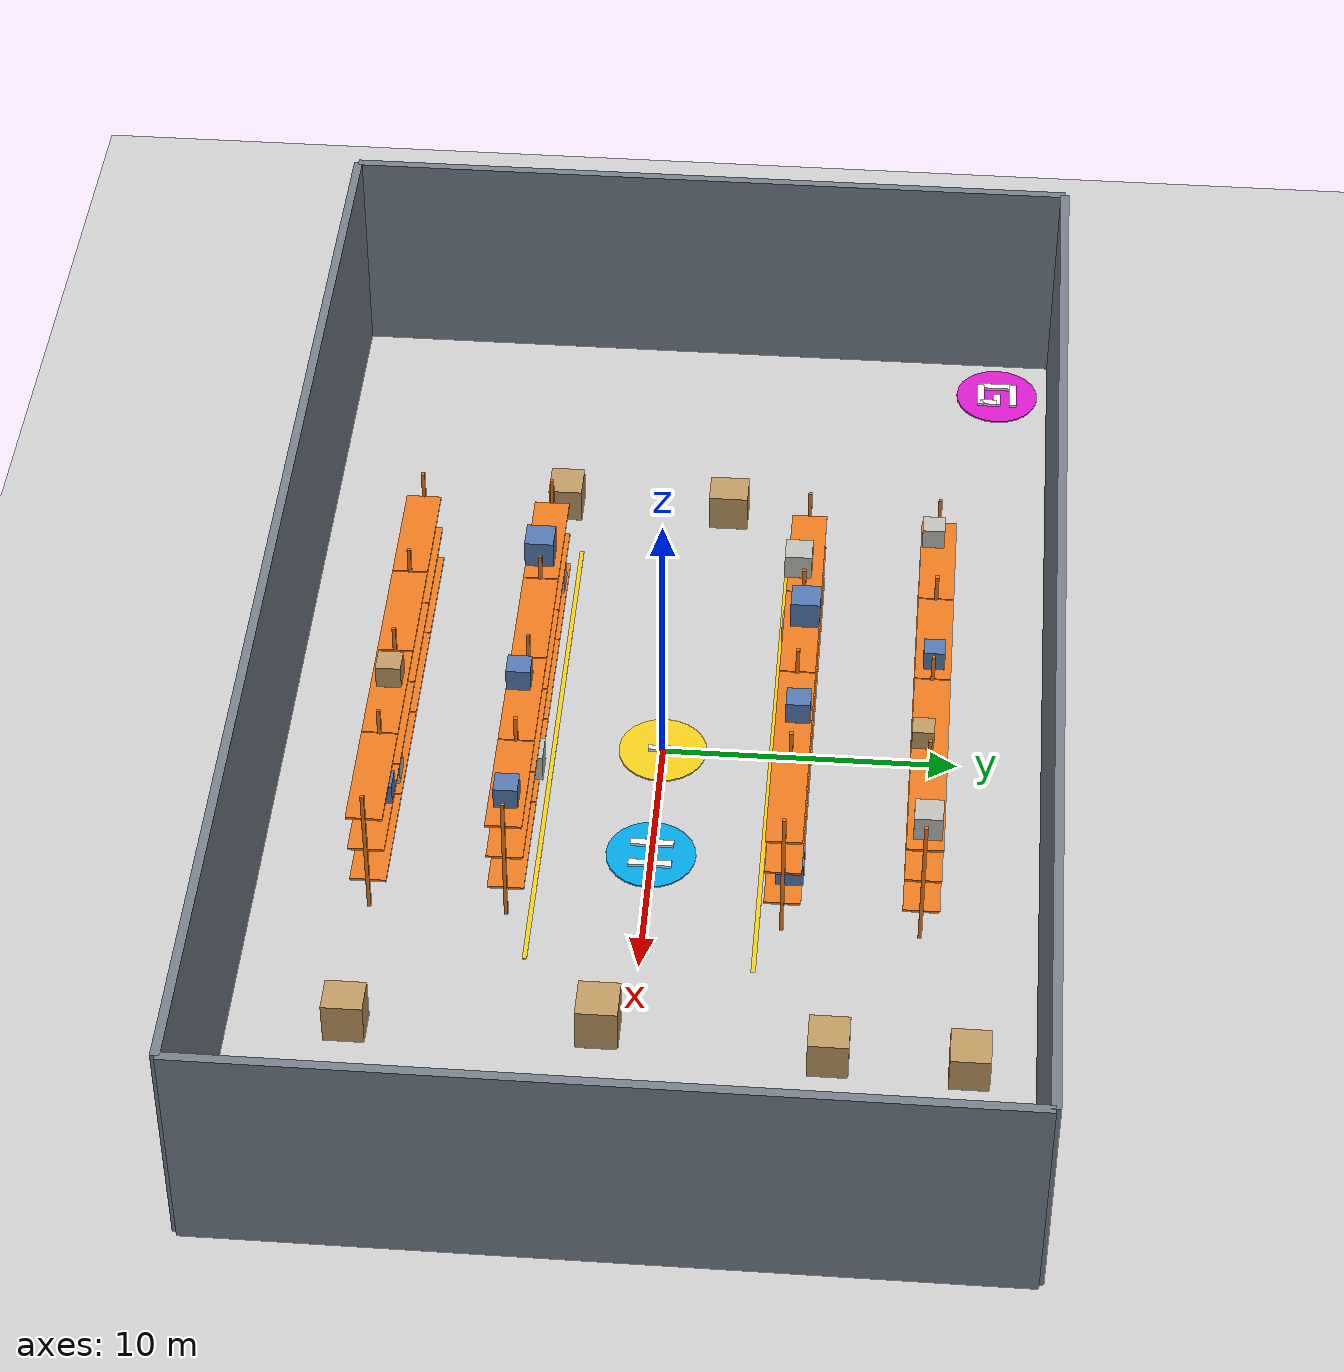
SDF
<?xml version="1.0" ?>
<sdf version="1.6">
  <world name="warehouse_course">
    <include><uri>model://sun</uri></include>
    <include><uri>model://ground_plane</uri></include>

    <!--  44m x 26m warehouse racks                              -->
    <!--  4 rack rows y=+/-4.5,+/-9, x in [-8,8], posts+shelves+cargo -->
    <!--  Central aisle |y|<3.9, SPAWN=(0,0) HOME=(5,0)          -->
    <!--  GOAL=(-20,11) NW corner clear area                     -->
    <!--  Top-layer cargo top ~5m > 4m flight altitude, cannot fly over -->

    <scene>
      <ambient>0.45 0.47 0.50 1</ambient>
      <background>0.60 0.63 0.68 1</background>
      <shadows>1</shadows>
    </scene>

    <!-- Outer walls (perimeter) -->
    <model name="perim_s">
      <static>true</static>
      <pose>0.00 -13.00 4.0 0 0 0</pose>
      <link name="body">
        <collision name="c"><geometry><box><size>44.00 0.30 8.0</size></box></geometry></collision>
        <visual name="v"><geometry><box><size>44.00 0.30 8.0</size></box></geometry>
          <material><ambient>0.35 0.38 0.42 1</ambient><diffuse>0.46 0.50 0.55 1</diffuse></material>
        </visual>
      </link>
    </model>
    <model name="perim_n">
      <static>true</static>
      <pose>0.00 13.00 4.0 0 0 0</pose>
      <link name="body">
        <collision name="c"><geometry><box><size>44.00 0.30 8.0</size></box></geometry></collision>
        <visual name="v"><geometry><box><size>44.00 0.30 8.0</size></box></geometry>
          <material><ambient>0.35 0.38 0.42 1</ambient><diffuse>0.46 0.50 0.55 1</diffuse></material>
        </visual>
      </link>
    </model>
    <model name="perim_w">
      <static>true</static>
      <pose>-22.00 0.00 4.0 0 0 0</pose>
      <link name="body">
        <collision name="c"><geometry><box><size>0.30 26.00 8.0</size></box></geometry></collision>
        <visual name="v"><geometry><box><size>0.30 26.00 8.0</size></box></geometry>
          <material><ambient>0.35 0.38 0.42 1</ambient><diffuse>0.46 0.50 0.55 1</diffuse></material>
        </visual>
      </link>
    </model>
    <model name="perim_e">
      <static>true</static>
      <pose>22.00 0.00 4.0 0 0 0</pose>
      <link name="body">
        <collision name="c"><geometry><box><size>0.30 26.00 8.0</size></box></geometry></collision>
        <visual name="v"><geometry><box><size>0.30 26.00 8.0</size></box></geometry>
          <material><ambient>0.35 0.38 0.42 1</ambient><diffuse>0.46 0.50 0.55 1</diffuse></material>
        </visual>
      </link>
    </model>

    <!-- Rack rows x4: 5 posts + 12 shelf boards per row -->
    <model name="shelf_r0_post0">
      <static>true</static>
      <pose>-8.00 -9.00 2.50 0 0 0</pose>
      <link name="body">
        <collision name="c"><geometry><box><size>0.12 0.12 5.00</size></box></geometry></collision>
        <visual name="v"><geometry><box><size>0.12 0.12 5.00</size></box></geometry>
          <material><ambient>0.80 0.38 0.08 1</ambient><diffuse>0.92 0.48 0.12 1</diffuse></material>
        </visual>
      </link>
    </model>
    <model name="shelf_r0_post1">
      <static>true</static>
      <pose>-4.00 -9.00 2.50 0 0 0</pose>
      <link name="body">
        <collision name="c"><geometry><box><size>0.12 0.12 5.00</size></box></geometry></collision>
        <visual name="v"><geometry><box><size>0.12 0.12 5.00</size></box></geometry>
          <material><ambient>0.80 0.38 0.08 1</ambient><diffuse>0.92 0.48 0.12 1</diffuse></material>
        </visual>
      </link>
    </model>
    <model name="shelf_r0_post2">
      <static>true</static>
      <pose>0.00 -9.00 2.50 0 0 0</pose>
      <link name="body">
        <collision name="c"><geometry><box><size>0.12 0.12 5.00</size></box></geometry></collision>
        <visual name="v"><geometry><box><size>0.12 0.12 5.00</size></box></geometry>
          <material><ambient>0.80 0.38 0.08 1</ambient><diffuse>0.92 0.48 0.12 1</diffuse></material>
        </visual>
      </link>
    </model>
    <model name="shelf_r0_post3">
      <static>true</static>
      <pose>4.00 -9.00 2.50 0 0 0</pose>
      <link name="body">
        <collision name="c"><geometry><box><size>0.12 0.12 5.00</size></box></geometry></collision>
        <visual name="v"><geometry><box><size>0.12 0.12 5.00</size></box></geometry>
          <material><ambient>0.80 0.38 0.08 1</ambient><diffuse>0.92 0.48 0.12 1</diffuse></material>
        </visual>
      </link>
    </model>
    <model name="shelf_r0_post4">
      <static>true</static>
      <pose>8.00 -9.00 2.50 0 0 0</pose>
      <link name="body">
        <collision name="c"><geometry><box><size>0.12 0.12 5.00</size></box></geometry></collision>
        <visual name="v"><geometry><box><size>0.12 0.12 5.00</size></box></geometry>
          <material><ambient>0.80 0.38 0.08 1</ambient><diffuse>0.92 0.48 0.12 1</diffuse></material>
        </visual>
      </link>
    </model>
    <model name="shelf_r0_deck0_L0">
      <static>true</static>
      <pose>-6.00 -9.00 1.160 0 0 0</pose>
      <link name="body">
        <collision name="c"><geometry><box><size>3.96 1.20 0.08</size></box></geometry></collision>
        <visual name="v"><geometry><box><size>3.96 1.20 0.08</size></box></geometry>
          <material><ambient>0.80 0.38 0.08 1</ambient><diffuse>0.92 0.48 0.12 1</diffuse></material>
        </visual>
      </link>
    </model>
    <model name="shelf_r0_deck0_L1">
      <static>true</static>
      <pose>-6.00 -9.00 2.560 0 0 0</pose>
      <link name="body">
        <collision name="c"><geometry><box><size>3.96 1.20 0.08</size></box></geometry></collision>
        <visual name="v"><geometry><box><size>3.96 1.20 0.08</size></box></geometry>
          <material><ambient>0.80 0.38 0.08 1</ambient><diffuse>0.92 0.48 0.12 1</diffuse></material>
        </visual>
      </link>
    </model>
    <model name="shelf_r0_deck0_L2">
      <static>true</static>
      <pose>-6.00 -9.00 3.960 0 0 0</pose>
      <link name="body">
        <collision name="c"><geometry><box><size>3.96 1.20 0.08</size></box></geometry></collision>
        <visual name="v"><geometry><box><size>3.96 1.20 0.08</size></box></geometry>
          <material><ambient>0.80 0.38 0.08 1</ambient><diffuse>0.92 0.48 0.12 1</diffuse></material>
        </visual>
      </link>
    </model>
    <model name="shelf_r0_deck1_L0">
      <static>true</static>
      <pose>-2.00 -9.00 1.160 0 0 0</pose>
      <link name="body">
        <collision name="c"><geometry><box><size>3.96 1.20 0.08</size></box></geometry></collision>
        <visual name="v"><geometry><box><size>3.96 1.20 0.08</size></box></geometry>
          <material><ambient>0.80 0.38 0.08 1</ambient><diffuse>0.92 0.48 0.12 1</diffuse></material>
        </visual>
      </link>
    </model>
    <model name="shelf_r0_deck1_L1">
      <static>true</static>
      <pose>-2.00 -9.00 2.560 0 0 0</pose>
      <link name="body">
        <collision name="c"><geometry><box><size>3.96 1.20 0.08</size></box></geometry></collision>
        <visual name="v"><geometry><box><size>3.96 1.20 0.08</size></box></geometry>
          <material><ambient>0.80 0.38 0.08 1</ambient><diffuse>0.92 0.48 0.12 1</diffuse></material>
        </visual>
      </link>
    </model>
    <model name="shelf_r0_deck1_L2">
      <static>true</static>
      <pose>-2.00 -9.00 3.960 0 0 0</pose>
      <link name="body">
        <collision name="c"><geometry><box><size>3.96 1.20 0.08</size></box></geometry></collision>
        <visual name="v"><geometry><box><size>3.96 1.20 0.08</size></box></geometry>
          <material><ambient>0.80 0.38 0.08 1</ambient><diffuse>0.92 0.48 0.12 1</diffuse></material>
        </visual>
      </link>
    </model>
    <model name="shelf_r0_deck2_L0">
      <static>true</static>
      <pose>2.00 -9.00 1.160 0 0 0</pose>
      <link name="body">
        <collision name="c"><geometry><box><size>3.96 1.20 0.08</size></box></geometry></collision>
        <visual name="v"><geometry><box><size>3.96 1.20 0.08</size></box></geometry>
          <material><ambient>0.80 0.38 0.08 1</ambient><diffuse>0.92 0.48 0.12 1</diffuse></material>
        </visual>
      </link>
    </model>
    <model name="shelf_r0_deck2_L1">
      <static>true</static>
      <pose>2.00 -9.00 2.560 0 0 0</pose>
      <link name="body">
        <collision name="c"><geometry><box><size>3.96 1.20 0.08</size></box></geometry></collision>
        <visual name="v"><geometry><box><size>3.96 1.20 0.08</size></box></geometry>
          <material><ambient>0.80 0.38 0.08 1</ambient><diffuse>0.92 0.48 0.12 1</diffuse></material>
        </visual>
      </link>
    </model>
    <model name="shelf_r0_deck2_L2">
      <static>true</static>
      <pose>2.00 -9.00 3.960 0 0 0</pose>
      <link name="body">
        <collision name="c"><geometry><box><size>3.96 1.20 0.08</size></box></geometry></collision>
        <visual name="v"><geometry><box><size>3.96 1.20 0.08</size></box></geometry>
          <material><ambient>0.80 0.38 0.08 1</ambient><diffuse>0.92 0.48 0.12 1</diffuse></material>
        </visual>
      </link>
    </model>
    <model name="shelf_r0_deck3_L0">
      <static>true</static>
      <pose>6.00 -9.00 1.160 0 0 0</pose>
      <link name="body">
        <collision name="c"><geometry><box><size>3.96 1.20 0.08</size></box></geometry></collision>
        <visual name="v"><geometry><box><size>3.96 1.20 0.08</size></box></geometry>
          <material><ambient>0.80 0.38 0.08 1</ambient><diffuse>0.92 0.48 0.12 1</diffuse></material>
        </visual>
      </link>
    </model>
    <model name="shelf_r0_deck3_L1">
      <static>true</static>
      <pose>6.00 -9.00 2.560 0 0 0</pose>
      <link name="body">
        <collision name="c"><geometry><box><size>3.96 1.20 0.08</size></box></geometry></collision>
        <visual name="v"><geometry><box><size>3.96 1.20 0.08</size></box></geometry>
          <material><ambient>0.80 0.38 0.08 1</ambient><diffuse>0.92 0.48 0.12 1</diffuse></material>
        </visual>
      </link>
    </model>
    <model name="shelf_r0_deck3_L2">
      <static>true</static>
      <pose>6.00 -9.00 3.960 0 0 0</pose>
      <link name="body">
        <collision name="c"><geometry><box><size>3.96 1.20 0.08</size></box></geometry></collision>
        <visual name="v"><geometry><box><size>3.96 1.20 0.08</size></box></geometry>
          <material><ambient>0.80 0.38 0.08 1</ambient><diffuse>0.92 0.48 0.12 1</diffuse></material>
        </visual>
      </link>
    </model>
    <model name="shelf_r1_post0">
      <static>true</static>
      <pose>-8.00 -4.50 2.50 0 0 0</pose>
      <link name="body">
        <collision name="c"><geometry><box><size>0.12 0.12 5.00</size></box></geometry></collision>
        <visual name="v"><geometry><box><size>0.12 0.12 5.00</size></box></geometry>
          <material><ambient>0.80 0.38 0.08 1</ambient><diffuse>0.92 0.48 0.12 1</diffuse></material>
        </visual>
      </link>
    </model>
    <model name="shelf_r1_post1">
      <static>true</static>
      <pose>-4.00 -4.50 2.50 0 0 0</pose>
      <link name="body">
        <collision name="c"><geometry><box><size>0.12 0.12 5.00</size></box></geometry></collision>
        <visual name="v"><geometry><box><size>0.12 0.12 5.00</size></box></geometry>
          <material><ambient>0.80 0.38 0.08 1</ambient><diffuse>0.92 0.48 0.12 1</diffuse></material>
        </visual>
      </link>
    </model>
    <model name="shelf_r1_post2">
      <static>true</static>
      <pose>0.00 -4.50 2.50 0 0 0</pose>
      <link name="body">
        <collision name="c"><geometry><box><size>0.12 0.12 5.00</size></box></geometry></collision>
        <visual name="v"><geometry><box><size>0.12 0.12 5.00</size></box></geometry>
          <material><ambient>0.80 0.38 0.08 1</ambient><diffuse>0.92 0.48 0.12 1</diffuse></material>
        </visual>
      </link>
    </model>
    <model name="shelf_r1_post3">
      <static>true</static>
      <pose>4.00 -4.50 2.50 0 0 0</pose>
      <link name="body">
        <collision name="c"><geometry><box><size>0.12 0.12 5.00</size></box></geometry></collision>
        <visual name="v"><geometry><box><size>0.12 0.12 5.00</size></box></geometry>
          <material><ambient>0.80 0.38 0.08 1</ambient><diffuse>0.92 0.48 0.12 1</diffuse></material>
        </visual>
      </link>
    </model>
    <model name="shelf_r1_post4">
      <static>true</static>
      <pose>8.00 -4.50 2.50 0 0 0</pose>
      <link name="body">
        <collision name="c"><geometry><box><size>0.12 0.12 5.00</size></box></geometry></collision>
        <visual name="v"><geometry><box><size>0.12 0.12 5.00</size></box></geometry>
          <material><ambient>0.80 0.38 0.08 1</ambient><diffuse>0.92 0.48 0.12 1</diffuse></material>
        </visual>
      </link>
    </model>
    <model name="shelf_r1_deck0_L0">
      <static>true</static>
      <pose>-6.00 -4.50 1.160 0 0 0</pose>
      <link name="body">
        <collision name="c"><geometry><box><size>3.96 1.20 0.08</size></box></geometry></collision>
        <visual name="v"><geometry><box><size>3.96 1.20 0.08</size></box></geometry>
          <material><ambient>0.80 0.38 0.08 1</ambient><diffuse>0.92 0.48 0.12 1</diffuse></material>
        </visual>
      </link>
    </model>
    <model name="shelf_r1_deck0_L1">
      <static>true</static>
      <pose>-6.00 -4.50 2.560 0 0 0</pose>
      <link name="body">
        <collision name="c"><geometry><box><size>3.96 1.20 0.08</size></box></geometry></collision>
        <visual name="v"><geometry><box><size>3.96 1.20 0.08</size></box></geometry>
          <material><ambient>0.80 0.38 0.08 1</ambient><diffuse>0.92 0.48 0.12 1</diffuse></material>
        </visual>
      </link>
    </model>
    <model name="shelf_r1_deck0_L2">
      <static>true</static>
      <pose>-6.00 -4.50 3.960 0 0 0</pose>
      <link name="body">
        <collision name="c"><geometry><box><size>3.96 1.20 0.08</size></box></geometry></collision>
        <visual name="v"><geometry><box><size>3.96 1.20 0.08</size></box></geometry>
          <material><ambient>0.80 0.38 0.08 1</ambient><diffuse>0.92 0.48 0.12 1</diffuse></material>
        </visual>
      </link>
    </model>
    <model name="shelf_r1_deck1_L0">
      <static>true</static>
      <pose>-2.00 -4.50 1.160 0 0 0</pose>
      <link name="body">
        <collision name="c"><geometry><box><size>3.96 1.20 0.08</size></box></geometry></collision>
        <visual name="v"><geometry><box><size>3.96 1.20 0.08</size></box></geometry>
          <material><ambient>0.80 0.38 0.08 1</ambient><diffuse>0.92 0.48 0.12 1</diffuse></material>
        </visual>
      </link>
    </model>
    <model name="shelf_r1_deck1_L1">
      <static>true</static>
      <pose>-2.00 -4.50 2.560 0 0 0</pose>
      <link name="body">
        <collision name="c"><geometry><box><size>3.96 1.20 0.08</size></box></geometry></collision>
        <visual name="v"><geometry><box><size>3.96 1.20 0.08</size></box></geometry>
          <material><ambient>0.80 0.38 0.08 1</ambient><diffuse>0.92 0.48 0.12 1</diffuse></material>
        </visual>
      </link>
    </model>
    <model name="shelf_r1_deck1_L2">
      <static>true</static>
      <pose>-2.00 -4.50 3.960 0 0 0</pose>
      <link name="body">
        <collision name="c"><geometry><box><size>3.96 1.20 0.08</size></box></geometry></collision>
        <visual name="v"><geometry><box><size>3.96 1.20 0.08</size></box></geometry>
          <material><ambient>0.80 0.38 0.08 1</ambient><diffuse>0.92 0.48 0.12 1</diffuse></material>
        </visual>
      </link>
    </model>
    <model name="shelf_r1_deck2_L0">
      <static>true</static>
      <pose>2.00 -4.50 1.160 0 0 0</pose>
      <link name="body">
        <collision name="c"><geometry><box><size>3.96 1.20 0.08</size></box></geometry></collision>
        <visual name="v"><geometry><box><size>3.96 1.20 0.08</size></box></geometry>
          <material><ambient>0.80 0.38 0.08 1</ambient><diffuse>0.92 0.48 0.12 1</diffuse></material>
        </visual>
      </link>
    </model>
    <model name="shelf_r1_deck2_L1">
      <static>true</static>
      <pose>2.00 -4.50 2.560 0 0 0</pose>
      <link name="body">
        <collision name="c"><geometry><box><size>3.96 1.20 0.08</size></box></geometry></collision>
        <visual name="v"><geometry><box><size>3.96 1.20 0.08</size></box></geometry>
          <material><ambient>0.80 0.38 0.08 1</ambient><diffuse>0.92 0.48 0.12 1</diffuse></material>
        </visual>
      </link>
    </model>
    <model name="shelf_r1_deck2_L2">
      <static>true</static>
      <pose>2.00 -4.50 3.960 0 0 0</pose>
      <link name="body">
        <collision name="c"><geometry><box><size>3.96 1.20 0.08</size></box></geometry></collision>
        <visual name="v"><geometry><box><size>3.96 1.20 0.08</size></box></geometry>
          <material><ambient>0.80 0.38 0.08 1</ambient><diffuse>0.92 0.48 0.12 1</diffuse></material>
        </visual>
      </link>
    </model>
    <model name="shelf_r1_deck3_L0">
      <static>true</static>
      <pose>6.00 -4.50 1.160 0 0 0</pose>
      <link name="body">
        <collision name="c"><geometry><box><size>3.96 1.20 0.08</size></box></geometry></collision>
        <visual name="v"><geometry><box><size>3.96 1.20 0.08</size></box></geometry>
          <material><ambient>0.80 0.38 0.08 1</ambient><diffuse>0.92 0.48 0.12 1</diffuse></material>
        </visual>
      </link>
    </model>
    <model name="shelf_r1_deck3_L1">
      <static>true</static>
      <pose>6.00 -4.50 2.560 0 0 0</pose>
      <link name="body">
        <collision name="c"><geometry><box><size>3.96 1.20 0.08</size></box></geometry></collision>
        <visual name="v"><geometry><box><size>3.96 1.20 0.08</size></box></geometry>
          <material><ambient>0.80 0.38 0.08 1</ambient><diffuse>0.92 0.48 0.12 1</diffuse></material>
        </visual>
      </link>
    </model>
    <model name="shelf_r1_deck3_L2">
      <static>true</static>
      <pose>6.00 -4.50 3.960 0 0 0</pose>
      <link name="body">
        <collision name="c"><geometry><box><size>3.96 1.20 0.08</size></box></geometry></collision>
        <visual name="v"><geometry><box><size>3.96 1.20 0.08</size></box></geometry>
          <material><ambient>0.80 0.38 0.08 1</ambient><diffuse>0.92 0.48 0.12 1</diffuse></material>
        </visual>
      </link>
    </model>
    <model name="shelf_r2_post0">
      <static>true</static>
      <pose>-8.00 4.50 2.50 0 0 0</pose>
      <link name="body">
        <collision name="c"><geometry><box><size>0.12 0.12 5.00</size></box></geometry></collision>
        <visual name="v"><geometry><box><size>0.12 0.12 5.00</size></box></geometry>
          <material><ambient>0.80 0.38 0.08 1</ambient><diffuse>0.92 0.48 0.12 1</diffuse></material>
        </visual>
      </link>
    </model>
    <model name="shelf_r2_post1">
      <static>true</static>
      <pose>-4.00 4.50 2.50 0 0 0</pose>
      <link name="body">
        <collision name="c"><geometry><box><size>0.12 0.12 5.00</size></box></geometry></collision>
        <visual name="v"><geometry><box><size>0.12 0.12 5.00</size></box></geometry>
          <material><ambient>0.80 0.38 0.08 1</ambient><diffuse>0.92 0.48 0.12 1</diffuse></material>
        </visual>
      </link>
    </model>
    <model name="shelf_r2_post2">
      <static>true</static>
      <pose>0.00 4.50 2.50 0 0 0</pose>
      <link name="body">
        <collision name="c"><geometry><box><size>0.12 0.12 5.00</size></box></geometry></collision>
        <visual name="v"><geometry><box><size>0.12 0.12 5.00</size></box></geometry>
          <material><ambient>0.80 0.38 0.08 1</ambient><diffuse>0.92 0.48 0.12 1</diffuse></material>
        </visual>
      </link>
    </model>
    <model name="shelf_r2_post3">
      <static>true</static>
      <pose>4.00 4.50 2.50 0 0 0</pose>
      <link name="body">
        <collision name="c"><geometry><box><size>0.12 0.12 5.00</size></box></geometry></collision>
        <visual name="v"><geometry><box><size>0.12 0.12 5.00</size></box></geometry>
          <material><ambient>0.80 0.38 0.08 1</ambient><diffuse>0.92 0.48 0.12 1</diffuse></material>
        </visual>
      </link>
    </model>
    <model name="shelf_r2_post4">
      <static>true</static>
      <pose>8.00 4.50 2.50 0 0 0</pose>
      <link name="body">
        <collision name="c"><geometry><box><size>0.12 0.12 5.00</size></box></geometry></collision>
        <visual name="v"><geometry><box><size>0.12 0.12 5.00</size></box></geometry>
          <material><ambient>0.80 0.38 0.08 1</ambient><diffuse>0.92 0.48 0.12 1</diffuse></material>
        </visual>
      </link>
    </model>
    <model name="shelf_r2_deck0_L0">
      <static>true</static>
      <pose>-6.00 4.50 1.160 0 0 0</pose>
      <link name="body">
        <collision name="c"><geometry><box><size>3.96 1.20 0.08</size></box></geometry></collision>
        <visual name="v"><geometry><box><size>3.96 1.20 0.08</size></box></geometry>
          <material><ambient>0.80 0.38 0.08 1</ambient><diffuse>0.92 0.48 0.12 1</diffuse></material>
        </visual>
      </link>
    </model>
    <model name="shelf_r2_deck0_L1">
      <static>true</static>
      <pose>-6.00 4.50 2.560 0 0 0</pose>
      <link name="body">
        <collision name="c"><geometry><box><size>3.96 1.20 0.08</size></box></geometry></collision>
        <visual name="v"><geometry><box><size>3.96 1.20 0.08</size></box></geometry>
          <material><ambient>0.80 0.38 0.08 1</ambient><diffuse>0.92 0.48 0.12 1</diffuse></material>
        </visual>
      </link>
    </model>
    <model name="shelf_r2_deck0_L2">
      <static>true</static>
      <pose>-6.00 4.50 3.960 0 0 0</pose>
      <link name="body">
        <collision name="c"><geometry><box><size>3.96 1.20 0.08</size></box></geometry></collision>
        <visual name="v"><geometry><box><size>3.96 1.20 0.08</size></box></geometry>
          <material><ambient>0.80 0.38 0.08 1</ambient><diffuse>0.92 0.48 0.12 1</diffuse></material>
        </visual>
      </link>
    </model>
    <model name="shelf_r2_deck1_L0">
      <static>true</static>
      <pose>-2.00 4.50 1.160 0 0 0</pose>
      <link name="body">
        <collision name="c"><geometry><box><size>3.96 1.20 0.08</size></box></geometry></collision>
        <visual name="v"><geometry><box><size>3.96 1.20 0.08</size></box></geometry>
          <material><ambient>0.80 0.38 0.08 1</ambient><diffuse>0.92 0.48 0.12 1</diffuse></material>
        </visual>
      </link>
    </model>
    <model name="shelf_r2_deck1_L1">
      <static>true</static>
      <pose>-2.00 4.50 2.560 0 0 0</pose>
      <link name="body">
        <collision name="c"><geometry><box><size>3.96 1.20 0.08</size></box></geometry></collision>
        <visual name="v"><geometry><box><size>3.96 1.20 0.08</size></box></geometry>
          <material><ambient>0.80 0.38 0.08 1</ambient><diffuse>0.92 0.48 0.12 1</diffuse></material>
        </visual>
      </link>
    </model>
    <model name="shelf_r2_deck1_L2">
      <static>true</static>
      <pose>-2.00 4.50 3.960 0 0 0</pose>
      <link name="body">
        <collision name="c"><geometry><box><size>3.96 1.20 0.08</size></box></geometry></collision>
        <visual name="v"><geometry><box><size>3.96 1.20 0.08</size></box></geometry>
          <material><ambient>0.80 0.38 0.08 1</ambient><diffuse>0.92 0.48 0.12 1</diffuse></material>
        </visual>
      </link>
    </model>
    <model name="shelf_r2_deck2_L0">
      <static>true</static>
      <pose>2.00 4.50 1.160 0 0 0</pose>
      <link name="body">
        <collision name="c"><geometry><box><size>3.96 1.20 0.08</size></box></geometry></collision>
        <visual name="v"><geometry><box><size>3.96 1.20 0.08</size></box></geometry>
          <material><ambient>0.80 0.38 0.08 1</ambient><diffuse>0.92 0.48 0.12 1</diffuse></material>
        </visual>
      </link>
    </model>
    <model name="shelf_r2_deck2_L1">
      <static>true</static>
      <pose>2.00 4.50 2.560 0 0 0</pose>
      <link name="body">
        <collision name="c"><geometry><box><size>3.96 1.20 0.08</size></box></geometry></collision>
        <visual name="v"><geometry><box><size>3.96 1.20 0.08</size></box></geometry>
          <material><ambient>0.80 0.38 0.08 1</ambient><diffuse>0.92 0.48 0.12 1</diffuse></material>
        </visual>
      </link>
    </model>
    <model name="shelf_r2_deck2_L2">
      <static>true</static>
      <pose>2.00 4.50 3.960 0 0 0</pose>
      <link name="body">
        <collision name="c"><geometry><box><size>3.96 1.20 0.08</size></box></geometry></collision>
        <visual name="v"><geometry><box><size>3.96 1.20 0.08</size></box></geometry>
          <material><ambient>0.80 0.38 0.08 1</ambient><diffuse>0.92 0.48 0.12 1</diffuse></material>
        </visual>
      </link>
    </model>
    <model name="shelf_r2_deck3_L0">
      <static>true</static>
      <pose>6.00 4.50 1.160 0 0 0</pose>
      <link name="body">
        <collision name="c"><geometry><box><size>3.96 1.20 0.08</size></box></geometry></collision>
        <visual name="v"><geometry><box><size>3.96 1.20 0.08</size></box></geometry>
          <material><ambient>0.80 0.38 0.08 1</ambient><diffuse>0.92 0.48 0.12 1</diffuse></material>
        </visual>
      </link>
    </model>
    <model name="shelf_r2_deck3_L1">
      <static>true</static>
      <pose>6.00 4.50 2.560 0 0 0</pose>
      <link name="body">
        <collision name="c"><geometry><box><size>3.96 1.20 0.08</size></box></geometry></collision>
        <visual name="v"><geometry><box><size>3.96 1.20 0.08</size></box></geometry>
          <material><ambient>0.80 0.38 0.08 1</ambient><diffuse>0.92 0.48 0.12 1</diffuse></material>
        </visual>
      </link>
    </model>
    <model name="shelf_r2_deck3_L2">
      <static>true</static>
      <pose>6.00 4.50 3.960 0 0 0</pose>
      <link name="body">
        <collision name="c"><geometry><box><size>3.96 1.20 0.08</size></box></geometry></collision>
        <visual name="v"><geometry><box><size>3.96 1.20 0.08</size></box></geometry>
          <material><ambient>0.80 0.38 0.08 1</ambient><diffuse>0.92 0.48 0.12 1</diffuse></material>
        </visual>
      </link>
    </model>
    <model name="shelf_r3_post0">
      <static>true</static>
      <pose>-8.00 9.00 2.50 0 0 0</pose>
      <link name="body">
        <collision name="c"><geometry><box><size>0.12 0.12 5.00</size></box></geometry></collision>
        <visual name="v"><geometry><box><size>0.12 0.12 5.00</size></box></geometry>
          <material><ambient>0.80 0.38 0.08 1</ambient><diffuse>0.92 0.48 0.12 1</diffuse></material>
        </visual>
      </link>
    </model>
    <model name="shelf_r3_post1">
      <static>true</static>
      <pose>-4.00 9.00 2.50 0 0 0</pose>
      <link name="body">
        <collision name="c"><geometry><box><size>0.12 0.12 5.00</size></box></geometry></collision>
        <visual name="v"><geometry><box><size>0.12 0.12 5.00</size></box></geometry>
          <material><ambient>0.80 0.38 0.08 1</ambient><diffuse>0.92 0.48 0.12 1</diffuse></material>
        </visual>
      </link>
    </model>
    <model name="shelf_r3_post2">
      <static>true</static>
      <pose>0.00 9.00 2.50 0 0 0</pose>
      <link name="body">
        <collision name="c"><geometry><box><size>0.12 0.12 5.00</size></box></geometry></collision>
        <visual name="v"><geometry><box><size>0.12 0.12 5.00</size></box></geometry>
          <material><ambient>0.80 0.38 0.08 1</ambient><diffuse>0.92 0.48 0.12 1</diffuse></material>
        </visual>
      </link>
    </model>
    <model name="shelf_r3_post3">
      <static>true</static>
      <pose>4.00 9.00 2.50 0 0 0</pose>
      <link name="body">
        <collision name="c"><geometry><box><size>0.12 0.12 5.00</size></box></geometry></collision>
        <visual name="v"><geometry><box><size>0.12 0.12 5.00</size></box></geometry>
          <material><ambient>0.80 0.38 0.08 1</ambient><diffuse>0.92 0.48 0.12 1</diffuse></material>
        </visual>
      </link>
    </model>
    <model name="shelf_r3_post4">
      <static>true</static>
      <pose>8.00 9.00 2.50 0 0 0</pose>
      <link name="body">
        <collision name="c"><geometry><box><size>0.12 0.12 5.00</size></box></geometry></collision>
        <visual name="v"><geometry><box><size>0.12 0.12 5.00</size></box></geometry>
          <material><ambient>0.80 0.38 0.08 1</ambient><diffuse>0.92 0.48 0.12 1</diffuse></material>
        </visual>
      </link>
    </model>
    <model name="shelf_r3_deck0_L0">
      <static>true</static>
      <pose>-6.00 9.00 1.160 0 0 0</pose>
      <link name="body">
        <collision name="c"><geometry><box><size>3.96 1.20 0.08</size></box></geometry></collision>
        <visual name="v"><geometry><box><size>3.96 1.20 0.08</size></box></geometry>
          <material><ambient>0.80 0.38 0.08 1</ambient><diffuse>0.92 0.48 0.12 1</diffuse></material>
        </visual>
      </link>
    </model>
    <model name="shelf_r3_deck0_L1">
      <static>true</static>
      <pose>-6.00 9.00 2.560 0 0 0</pose>
      <link name="body">
        <collision name="c"><geometry><box><size>3.96 1.20 0.08</size></box></geometry></collision>
        <visual name="v"><geometry><box><size>3.96 1.20 0.08</size></box></geometry>
          <material><ambient>0.80 0.38 0.08 1</ambient><diffuse>0.92 0.48 0.12 1</diffuse></material>
        </visual>
      </link>
    </model>
    <model name="shelf_r3_deck0_L2">
      <static>true</static>
      <pose>-6.00 9.00 3.960 0 0 0</pose>
      <link name="body">
        <collision name="c"><geometry><box><size>3.96 1.20 0.08</size></box></geometry></collision>
        <visual name="v"><geometry><box><size>3.96 1.20 0.08</size></box></geometry>
          <material><ambient>0.80 0.38 0.08 1</ambient><diffuse>0.92 0.48 0.12 1</diffuse></material>
        </visual>
      </link>
    </model>
    <model name="shelf_r3_deck1_L0">
      <static>true</static>
      <pose>-2.00 9.00 1.160 0 0 0</pose>
      <link name="body">
        <collision name="c"><geometry><box><size>3.96 1.20 0.08</size></box></geometry></collision>
        <visual name="v"><geometry><box><size>3.96 1.20 0.08</size></box></geometry>
          <material><ambient>0.80 0.38 0.08 1</ambient><diffuse>0.92 0.48 0.12 1</diffuse></material>
        </visual>
      </link>
    </model>
    <model name="shelf_r3_deck1_L1">
      <static>true</static>
      <pose>-2.00 9.00 2.560 0 0 0</pose>
      <link name="body">
        <collision name="c"><geometry><box><size>3.96 1.20 0.08</size></box></geometry></collision>
        <visual name="v"><geometry><box><size>3.96 1.20 0.08</size></box></geometry>
          <material><ambient>0.80 0.38 0.08 1</ambient><diffuse>0.92 0.48 0.12 1</diffuse></material>
        </visual>
      </link>
    </model>
    <model name="shelf_r3_deck1_L2">
      <static>true</static>
      <pose>-2.00 9.00 3.960 0 0 0</pose>
      <link name="body">
        <collision name="c"><geometry><box><size>3.96 1.20 0.08</size></box></geometry></collision>
        <visual name="v"><geometry><box><size>3.96 1.20 0.08</size></box></geometry>
          <material><ambient>0.80 0.38 0.08 1</ambient><diffuse>0.92 0.48 0.12 1</diffuse></material>
        </visual>
      </link>
    </model>
    <model name="shelf_r3_deck2_L0">
      <static>true</static>
      <pose>2.00 9.00 1.160 0 0 0</pose>
      <link name="body">
        <collision name="c"><geometry><box><size>3.96 1.20 0.08</size></box></geometry></collision>
        <visual name="v"><geometry><box><size>3.96 1.20 0.08</size></box></geometry>
          <material><ambient>0.80 0.38 0.08 1</ambient><diffuse>0.92 0.48 0.12 1</diffuse></material>
        </visual>
      </link>
    </model>
    <model name="shelf_r3_deck2_L1">
      <static>true</static>
      <pose>2.00 9.00 2.560 0 0 0</pose>
      <link name="body">
        <collision name="c"><geometry><box><size>3.96 1.20 0.08</size></box></geometry></collision>
        <visual name="v"><geometry><box><size>3.96 1.20 0.08</size></box></geometry>
          <material><ambient>0.80 0.38 0.08 1</ambient><diffuse>0.92 0.48 0.12 1</diffuse></material>
        </visual>
      </link>
    </model>
    <model name="shelf_r3_deck2_L2">
      <static>true</static>
      <pose>2.00 9.00 3.960 0 0 0</pose>
      <link name="body">
        <collision name="c"><geometry><box><size>3.96 1.20 0.08</size></box></geometry></collision>
        <visual name="v"><geometry><box><size>3.96 1.20 0.08</size></box></geometry>
          <material><ambient>0.80 0.38 0.08 1</ambient><diffuse>0.92 0.48 0.12 1</diffuse></material>
        </visual>
      </link>
    </model>
    <model name="shelf_r3_deck3_L0">
      <static>true</static>
      <pose>6.00 9.00 1.160 0 0 0</pose>
      <link name="body">
        <collision name="c"><geometry><box><size>3.96 1.20 0.08</size></box></geometry></collision>
        <visual name="v"><geometry><box><size>3.96 1.20 0.08</size></box></geometry>
          <material><ambient>0.80 0.38 0.08 1</ambient><diffuse>0.92 0.48 0.12 1</diffuse></material>
        </visual>
      </link>
    </model>
    <model name="shelf_r3_deck3_L1">
      <static>true</static>
      <pose>6.00 9.00 2.560 0 0 0</pose>
      <link name="body">
        <collision name="c"><geometry><box><size>3.96 1.20 0.08</size></box></geometry></collision>
        <visual name="v"><geometry><box><size>3.96 1.20 0.08</size></box></geometry>
          <material><ambient>0.80 0.38 0.08 1</ambient><diffuse>0.92 0.48 0.12 1</diffuse></material>
        </visual>
      </link>
    </model>
    <model name="shelf_r3_deck3_L2">
      <static>true</static>
      <pose>6.00 9.00 3.960 0 0 0</pose>
      <link name="body">
        <collision name="c"><geometry><box><size>3.96 1.20 0.08</size></box></geometry></collision>
        <visual name="v"><geometry><box><size>3.96 1.20 0.08</size></box></geometry>
          <material><ambient>0.80 0.38 0.08 1</ambient><diffuse>0.92 0.48 0.12 1</diffuse></material>
        </visual>
      </link>
    </model>

    <!-- Cargo boxes on shelves (23, ~45% of slots occupied) -->
    <model name="cargo_r0_b2_L0">
      <static>true</static>
      <pose>3.06 -8.93 1.620 0 0 0</pose>
      <link name="body">
        <collision name="c"><geometry><box><size>0.84 0.84 0.84</size></box></geometry></collision>
        <visual name="v"><geometry><box><size>0.84 0.84 0.84</size></box></geometry>
          <material><ambient>0.60 0.60 0.58 1</ambient><diffuse>0.75 0.75 0.72 1</diffuse></material>
        </visual>
      </link>
    </model>
    <model name="cargo_r0_b2_L2">
      <static>true</static>
      <pose>1.39 -8.98 4.420 0 0 0</pose>
      <link name="body">
        <collision name="c"><geometry><box><size>0.84 0.84 0.84</size></box></geometry></collision>
        <visual name="v"><geometry><box><size>0.84 0.84 0.84</size></box></geometry>
          <material><ambient>0.62 0.48 0.30 1</ambient><diffuse>0.75 0.60 0.38 1</diffuse></material>
        </visual>
      </link>
    </model>
    <model name="cargo_r0_b3_L1">
      <static>true</static>
      <pose>5.47 -8.79 2.983 0 0 0</pose>
      <link name="body">
        <collision name="c"><geometry><box><size>0.77 0.77 0.77</size></box></geometry></collision>
        <visual name="v"><geometry><box><size>0.77 0.77 0.77</size></box></geometry>
          <material><ambient>0.25 0.35 0.55 1</ambient><diffuse>0.33 0.47 0.70 1</diffuse></material>
        </visual>
      </link>
    </model>
    <model name="cargo_r1_b0_L0">
      <static>true</static>
      <pose>-6.87 -4.44 1.670 0 0 0</pose>
      <link name="body">
        <collision name="c"><geometry><box><size>0.94 0.94 0.94</size></box></geometry></collision>
        <visual name="v"><geometry><box><size>0.94 0.94 0.94</size></box></geometry>
          <material><ambient>0.60 0.60 0.58 1</ambient><diffuse>0.75 0.75 0.72 1</diffuse></material>
        </visual>
      </link>
    </model>
    <model name="cargo_r1_b0_L1">
      <static>true</static>
      <pose>-5.11 -4.65 2.950 0 0 0</pose>
      <link name="body">
        <collision name="c"><geometry><box><size>0.70 0.70 0.70</size></box></geometry></collision>
        <visual name="v"><geometry><box><size>0.70 0.70 0.70</size></box></geometry>
          <material><ambient>0.25 0.35 0.55 1</ambient><diffuse>0.33 0.47 0.70 1</diffuse></material>
        </visual>
      </link>
    </model>
    <model name="cargo_r1_b0_L2">
      <static>true</static>
      <pose>-5.11 -4.61 4.497 0 0 0</pose>
      <link name="body">
        <collision name="c"><geometry><box><size>0.99 0.99 0.99</size></box></geometry></collision>
        <visual name="v"><geometry><box><size>0.99 0.99 0.99</size></box></geometry>
          <material><ambient>0.25 0.35 0.55 1</ambient><diffuse>0.33 0.47 0.70 1</diffuse></material>
        </visual>
      </link>
    </model>
    <model name="cargo_r1_b2_L0">
      <static>true</static>
      <pose>2.46 -4.27 1.691 0 0 0</pose>
      <link name="body">
        <collision name="c"><geometry><box><size>0.98 0.98 0.98</size></box></geometry></collision>
        <visual name="v"><geometry><box><size>0.98 0.98 0.98</size></box></geometry>
          <material><ambient>0.60 0.60 0.58 1</ambient><diffuse>0.75 0.75 0.72 1</diffuse></material>
        </visual>
      </link>
    </model>
    <model name="cargo_r1_b2_L2">
      <static>true</static>
      <pose>1.20 -4.68 4.404 0 0 0</pose>
      <link name="body">
        <collision name="c"><geometry><box><size>0.81 0.81 0.81</size></box></geometry></collision>
        <visual name="v"><geometry><box><size>0.81 0.81 0.81</size></box></geometry>
          <material><ambient>0.25 0.35 0.55 1</ambient><diffuse>0.33 0.47 0.70 1</diffuse></material>
        </visual>
      </link>
    </model>
    <model name="cargo_r1_b3_L0">
      <static>true</static>
      <pose>6.25 -4.75 1.595 0 0 0</pose>
      <link name="body">
        <collision name="c"><geometry><box><size>0.79 0.79 0.79</size></box></geometry></collision>
        <visual name="v"><geometry><box><size>0.79 0.79 0.79</size></box></geometry>
          <material><ambient>0.25 0.35 0.55 1</ambient><diffuse>0.33 0.47 0.70 1</diffuse></material>
        </visual>
      </link>
    </model>
    <model name="cargo_r1_b3_L2">
      <static>true</static>
      <pose>6.76 -4.51 4.396 0 0 0</pose>
      <link name="body">
        <collision name="c"><geometry><box><size>0.79 0.79 0.79</size></box></geometry></collision>
        <visual name="v"><geometry><box><size>0.79 0.79 0.79</size></box></geometry>
          <material><ambient>0.25 0.35 0.55 1</ambient><diffuse>0.33 0.47 0.70 1</diffuse></material>
        </visual>
      </link>
    </model>
    <model name="cargo_r2_b0_L0">
      <static>true</static>
      <pose>-5.51 4.28 1.622 0 0 0</pose>
      <link name="body">
        <collision name="c"><geometry><box><size>0.84 0.84 0.84</size></box></geometry></collision>
        <visual name="v"><geometry><box><size>0.84 0.84 0.84</size></box></geometry>
          <material><ambient>0.60 0.60 0.58 1</ambient><diffuse>0.75 0.75 0.72 1</diffuse></material>
        </visual>
      </link>
    </model>
    <model name="cargo_r2_b0_L2">
      <static>true</static>
      <pose>-5.17 4.26 4.462 0 0 0</pose>
      <link name="body">
        <collision name="c"><geometry><box><size>0.92 0.92 0.92</size></box></geometry></collision>
        <visual name="v"><geometry><box><size>0.92 0.92 0.92</size></box></geometry>
          <material><ambient>0.60 0.60 0.58 1</ambient><diffuse>0.75 0.75 0.72 1</diffuse></material>
        </visual>
      </link>
    </model>
    <model name="cargo_r2_b1_L1">
      <static>true</static>
      <pose>-3.18 4.27 3.037 0 0 0</pose>
      <link name="body">
        <collision name="c"><geometry><box><size>0.87 0.87 0.87</size></box></geometry></collision>
        <visual name="v"><geometry><box><size>0.87 0.87 0.87</size></box></geometry>
          <material><ambient>0.60 0.60 0.58 1</ambient><diffuse>0.75 0.75 0.72 1</diffuse></material>
        </visual>
      </link>
    </model>
    <model name="cargo_r2_b1_L2">
      <static>true</static>
      <pose>-2.73 4.63 4.493 0 0 0</pose>
      <link name="body">
        <collision name="c"><geometry><box><size>0.99 0.99 0.99</size></box></geometry></collision>
        <visual name="v"><geometry><box><size>0.99 0.99 0.99</size></box></geometry>
          <material><ambient>0.25 0.35 0.55 1</ambient><diffuse>0.33 0.47 0.70 1</diffuse></material>
        </visual>
      </link>
    </model>
    <model name="cargo_r2_b2_L2">
      <static>true</static>
      <pose>2.06 4.64 4.403 0 0 0</pose>
      <link name="body">
        <collision name="c"><geometry><box><size>0.81 0.81 0.81</size></box></geometry></collision>
        <visual name="v"><geometry><box><size>0.81 0.81 0.81</size></box></geometry>
          <material><ambient>0.25 0.35 0.55 1</ambient><diffuse>0.33 0.47 0.70 1</diffuse></material>
        </visual>
      </link>
    </model>
    <model name="cargo_r2_b3_L0">
      <static>true</static>
      <pose>6.71 4.68 1.662 0 0 0</pose>
      <link name="body">
        <collision name="c"><geometry><box><size>0.92 0.92 0.92</size></box></geometry></collision>
        <visual name="v"><geometry><box><size>0.92 0.92 0.92</size></box></geometry>
          <material><ambient>0.25 0.35 0.55 1</ambient><diffuse>0.33 0.47 0.70 1</diffuse></material>
        </visual>
      </link>
    </model>
    <model name="cargo_r2_b3_L1">
      <static>true</static>
      <pose>5.02 4.42 3.092 0 0 0</pose>
      <link name="body">
        <collision name="c"><geometry><box><size>0.98 0.98 0.98</size></box></geometry></collision>
        <visual name="v"><geometry><box><size>0.98 0.98 0.98</size></box></geometry>
          <material><ambient>0.60 0.60 0.58 1</ambient><diffuse>0.75 0.75 0.72 1</diffuse></material>
        </visual>
      </link>
    </model>
    <model name="cargo_r3_b0_L1">
      <static>true</static>
      <pose>-5.89 8.91 3.089 0 0 0</pose>
      <link name="body">
        <collision name="c"><geometry><box><size>0.98 0.98 0.98</size></box></geometry></collision>
        <visual name="v"><geometry><box><size>0.98 0.98 0.98</size></box></geometry>
          <material><ambient>0.25 0.35 0.55 1</ambient><diffuse>0.33 0.47 0.70 1</diffuse></material>
        </visual>
      </link>
    </model>
    <model name="cargo_r3_b0_L2">
      <static>true</static>
      <pose>-7.01 8.82 4.377 0 0 0</pose>
      <link name="body">
        <collision name="c"><geometry><box><size>0.75 0.75 0.75</size></box></geometry></collision>
        <visual name="v"><geometry><box><size>0.75 0.75 0.75</size></box></geometry>
          <material><ambient>0.60 0.60 0.58 1</ambient><diffuse>0.75 0.75 0.72 1</diffuse></material>
        </visual>
      </link>
    </model>
    <model name="cargo_r3_b1_L2">
      <static>true</static>
      <pose>-0.83 9.02 4.357 0 0 0</pose>
      <link name="body">
        <collision name="c"><geometry><box><size>0.71 0.71 0.71</size></box></geometry></collision>
        <visual name="v"><geometry><box><size>0.71 0.71 0.71</size></box></geometry>
          <material><ambient>0.25 0.35 0.55 1</ambient><diffuse>0.33 0.47 0.70 1</diffuse></material>
        </visual>
      </link>
    </model>
    <model name="cargo_r3_b2_L0">
      <static>true</static>
      <pose>2.23 9.16 1.586 0 0 0</pose>
      <link name="body">
        <collision name="c"><geometry><box><size>0.77 0.77 0.77</size></box></geometry></collision>
        <visual name="v"><geometry><box><size>0.77 0.77 0.77</size></box></geometry>
          <material><ambient>0.25 0.35 0.55 1</ambient><diffuse>0.33 0.47 0.70 1</diffuse></material>
        </visual>
      </link>
    </model>
    <model name="cargo_r3_b2_L2">
      <static>true</static>
      <pose>3.00 8.77 4.358 0 0 0</pose>
      <link name="body">
        <collision name="c"><geometry><box><size>0.72 0.72 0.72</size></box></geometry></collision>
        <visual name="v"><geometry><box><size>0.72 0.72 0.72</size></box></geometry>
          <material><ambient>0.62 0.48 0.30 1</ambient><diffuse>0.75 0.60 0.38 1</diffuse></material>
        </visual>
      </link>
    </model>
    <model name="cargo_r3_b3_L2">
      <static>true</static>
      <pose>7.08 9.07 4.460 0 0 0</pose>
      <link name="body">
        <collision name="c"><geometry><box><size>0.92 0.92 0.92</size></box></geometry></collision>
        <visual name="v"><geometry><box><size>0.92 0.92 0.92</size></box></geometry>
          <material><ambient>0.60 0.60 0.58 1</ambient><diffuse>0.75 0.75 0.72 1</diffuse></material>
        </visual>
      </link>
    </model>

    <!-- Loose floor stacks (8: 6 east + 2 west) -->
    <model name="stack_00">
      <static>true</static>
      <pose>17.88 -8.65 0.753 0 0 0</pose>
      <link name="body">
        <collision name="c"><geometry><box><size>1.23 1.14 1.507</size></box></geometry></collision>
        <visual name="v"><geometry><box><size>1.23 1.14 1.507</size></box></geometry>
          <material><ambient>0.62 0.48 0.30 1</ambient><diffuse>0.75 0.60 0.38 1</diffuse></material>
        </visual>
      </link>
    </model>
    <model name="stack_01">
      <static>true</static>
      <pose>12.95 -1.03 0.793 0 0 0</pose>
      <link name="body">
        <collision name="c"><geometry><box><size>1.40 1.36 1.586</size></box></geometry></collision>
        <visual name="v"><geometry><box><size>1.40 1.36 1.586</size></box></geometry>
          <material><ambient>0.62 0.48 0.30 1</ambient><diffuse>0.75 0.60 0.38 1</diffuse></material>
        </visual>
      </link>
    </model>
    <model name="stack_02">
      <static>true</static>
      <pose>17.30 -0.46 0.544 0 0 0</pose>
      <link name="body">
        <collision name="c"><geometry><box><size>1.19 1.22 1.088</size></box></geometry></collision>
        <visual name="v"><geometry><box><size>1.19 1.22 1.088</size></box></geometry>
          <material><ambient>0.62 0.48 0.30 1</ambient><diffuse>0.75 0.60 0.38 1</diffuse></material>
        </visual>
      </link>
    </model>
    <model name="stack_03">
      <static>true</static>
      <pose>13.77 10.74 0.650 0 0 0</pose>
      <link name="body">
        <collision name="c"><geometry><box><size>1.39 1.29 1.300</size></box></geometry></collision>
        <visual name="v"><geometry><box><size>1.39 1.29 1.300</size></box></geometry>
          <material><ambient>0.62 0.48 0.30 1</ambient><diffuse>0.75 0.60 0.38 1</diffuse></material>
        </visual>
      </link>
    </model>
    <model name="stack_04">
      <static>true</static>
      <pose>13.38 -9.04 0.760 0 0 0</pose>
      <link name="body">
        <collision name="c"><geometry><box><size>1.18 1.33 1.520</size></box></geometry></collision>
        <visual name="v"><geometry><box><size>1.18 1.33 1.520</size></box></geometry>
          <material><ambient>0.62 0.48 0.30 1</ambient><diffuse>0.75 0.60 0.38 1</diffuse></material>
        </visual>
      </link>
    </model>
    <model name="stack_05">
      <static>true</static>
      <pose>13.61 6.29 0.699 0 0 0</pose>
      <link name="body">
        <collision name="c"><geometry><box><size>1.33 1.31 1.398</size></box></geometry></collision>
        <visual name="v"><geometry><box><size>1.33 1.31 1.398</size></box></geometry>
          <material><ambient>0.62 0.48 0.30 1</ambient><diffuse>0.75 0.60 0.38 1</diffuse></material>
        </visual>
      </link>
    </model>
    <model name="stack_06">
      <static>true</static>
      <pose>-12.40 -4.46 0.646 0 0 0</pose>
      <link name="body">
        <collision name="c"><geometry><box><size>1.31 1.18 1.291</size></box></geometry></collision>
        <visual name="v"><geometry><box><size>1.31 1.18 1.291</size></box></geometry>
          <material><ambient>0.62 0.48 0.30 1</ambient><diffuse>0.75 0.60 0.38 1</diffuse></material>
        </visual>
      </link>
    </model>
    <model name="stack_07">
      <static>true</static>
      <pose>-12.30 1.44 0.695 0 0 0</pose>
      <link name="body">
        <collision name="c"><geometry><box><size>1.19 1.38 1.390</size></box></geometry></collision>
        <visual name="v"><geometry><box><size>1.19 1.38 1.390</size></box></geometry>
          <material><ambient>0.62 0.48 0.30 1</ambient><diffuse>0.75 0.60 0.38 1</diffuse></material>
        </visual>
      </link>
    </model>

    <!-- Yellow lines on central aisle floor (visual only) -->
    <model name="aisle_stripe_p">
      <static>true</static>
      <pose>0.0 3.70 0.011 0 0 0</pose>
      <link name="link">
        <visual name="v"><geometry><box><size>20.0 0.15 0.02</size></box></geometry>
          <material><ambient>0.9 0.75 0.05 1</ambient><diffuse>0.95 0.8 0.1 1</diffuse><emissive>0.25 0.2 0.02 1</emissive></material>
        </visual>
      </link>
    </model>
    <model name="aisle_stripe_m">
      <static>true</static>
      <pose>0.0 -3.70 0.011 0 0 0</pose>
      <link name="link">
        <visual name="v"><geometry><box><size>20.0 0.15 0.02</size></box></geometry>
          <material><ambient>0.9 0.75 0.05 1</ambient><diffuse>0.95 0.8 0.1 1</diffuse><emissive>0.25 0.2 0.02 1</emissive></material>
        </visual>
      </link>
    </model>

    <!-- SPAWN: (0.0,0.0) - yellow disc + white cross -->
    <model name="spawn_marker">
      <static>true</static>
      <pose>0.00 0.00 0 0 0 0</pose>
      <link name="link">
        <visual name="disc">
          <pose>0 0 0.025 0 0 0</pose>
          <geometry><cylinder><radius>1.5</radius><length>0.05</length></cylinder></geometry>
          <material>
            <ambient>0.95 0.8 0.1 1</ambient><diffuse>0.95 0.8 0.1 1</diffuse>
            <specular>0.1 0.1 0.1 1</specular><emissive>0.95 0.8 0.1 1</emissive>
          </material>
        </visual>
        <visual name="plus_h">
          <pose>0 0 0.1 0 0 0</pose>
          <geometry><box><size>1.0 0.2 0.1</size></box></geometry>
          <material><ambient>1 1 1 1</ambient><diffuse>1 1 1 1</diffuse><emissive>0.4 0.4 0.4 1</emissive></material>
        </visual>
        <visual name="plus_v">
          <pose>0 0 0.1 0 0 0</pose>
          <geometry><box><size>0.2 1.0 0.1</size></box></geometry>
          <material><ambient>1 1 1 1</ambient><diffuse>1 1 1 1</diffuse><emissive>0.4 0.4 0.4 1</emissive></material>
        </visual>
      </link>
    </model>

    <!-- HOME: (5.0,0.0) - cyan disc + white H -->
    <model name="home_marker">
      <static>true</static>
      <pose>5.00 0.00 0 0 0 0</pose>
      <link name="link">
        <visual name="disc">
          <pose>0 0 0.025 0 0 0</pose>
          <geometry><cylinder><radius>1.5</radius><length>0.05</length></cylinder></geometry>
          <material>
            <ambient>0.0 0.65 0.9 1</ambient><diffuse>0.0 0.65 0.9 1</diffuse>
            <specular>0.1 0.1 0.1 1</specular><emissive>0.0 0.65 0.9 1</emissive>
          </material>
        </visual>
        <visual name="h_left">
          <pose>-0.475 0 0.1 0 0 0</pose>
          <geometry><box><size>0.25 1.45 0.1</size></box></geometry>
          <material><ambient>1 1 1 1</ambient><diffuse>1 1 1 1</diffuse><emissive>0.4 0.4 0.4 1</emissive></material>
        </visual>
        <visual name="h_right">
          <pose>0.475 0 0.1 0 0 0</pose>
          <geometry><box><size>0.25 1.45 0.1</size></box></geometry>
          <material><ambient>1 1 1 1</ambient><diffuse>1 1 1 1</diffuse><emissive>0.4 0.4 0.4 1</emissive></material>
        </visual>
        <visual name="h_mid">
          <pose>0 0 0.1 0 0 0</pose>
          <geometry><box><size>0.7 0.25 0.1</size></box></geometry>
          <material><ambient>1 1 1 1</ambient><diffuse>1 1 1 1</diffuse><emissive>0.4 0.4 0.4 1</emissive></material>
        </visual>
      </link>
    </model>

    <!-- GOAL: (-20.0,11.0) - magenta disc + white G -->
    <model name="goal_marker">
      <static>true</static>
      <pose>-20.00 11.00 0 0 0 0</pose>
      <link name="link">
        <visual name="disc">
          <pose>0 0 0.025 0 0 0</pose>
          <geometry><cylinder><radius>1.5</radius><length>0.05</length></cylinder></geometry>
          <material>
            <ambient>0.85 0.1 0.8 1</ambient><diffuse>0.85 0.1 0.8 1</diffuse>
            <specular>0.1 0.1 0.1 1</specular><emissive>0.85 0.1 0.8 1</emissive>
          </material>
        </visual>
        <visual name="g_top">
          <pose>0 0.6 0.1 0 0 0</pose>
          <geometry><box><size>1.2 0.25 0.1</size></box></geometry>
          <material><ambient>1 1 1 1</ambient><diffuse>1 1 1 1</diffuse><emissive>0.4 0.4 0.4 1</emissive></material>
        </visual>
        <visual name="g_left">
          <pose>-0.475 0 0.1 0 0 0</pose>
          <geometry><box><size>0.25 1.45 0.1</size></box></geometry>
          <material><ambient>1 1 1 1</ambient><diffuse>1 1 1 1</diffuse><emissive>0.4 0.4 0.4 1</emissive></material>
        </visual>
        <visual name="g_bottom">
          <pose>0 -0.6 0.1 0 0 0</pose>
          <geometry><box><size>1.2 0.25 0.1</size></box></geometry>
          <material><ambient>1 1 1 1</ambient><diffuse>1 1 1 1</diffuse><emissive>0.4 0.4 0.4 1</emissive></material>
        </visual>
        <visual name="g_right_lower">
          <pose>0.475 -0.3 0.1 0 0 0</pose>
          <geometry><box><size>0.25 0.6 0.1</size></box></geometry>
          <material><ambient>1 1 1 1</ambient><diffuse>1 1 1 1</diffuse><emissive>0.4 0.4 0.4 1</emissive></material>
        </visual>
        <visual name="g_mid_stub">
          <pose>0.3 0 0.1 0 0 0</pose>
          <geometry><box><size>0.6 0.25 0.1</size></box></geometry>
          <material><ambient>1 1 1 1</ambient><diffuse>1 1 1 1</diffuse><emissive>0.4 0.4 0.4 1</emissive></material>
        </visual>
      </link>
    </model>
  </world>
</sdf>
